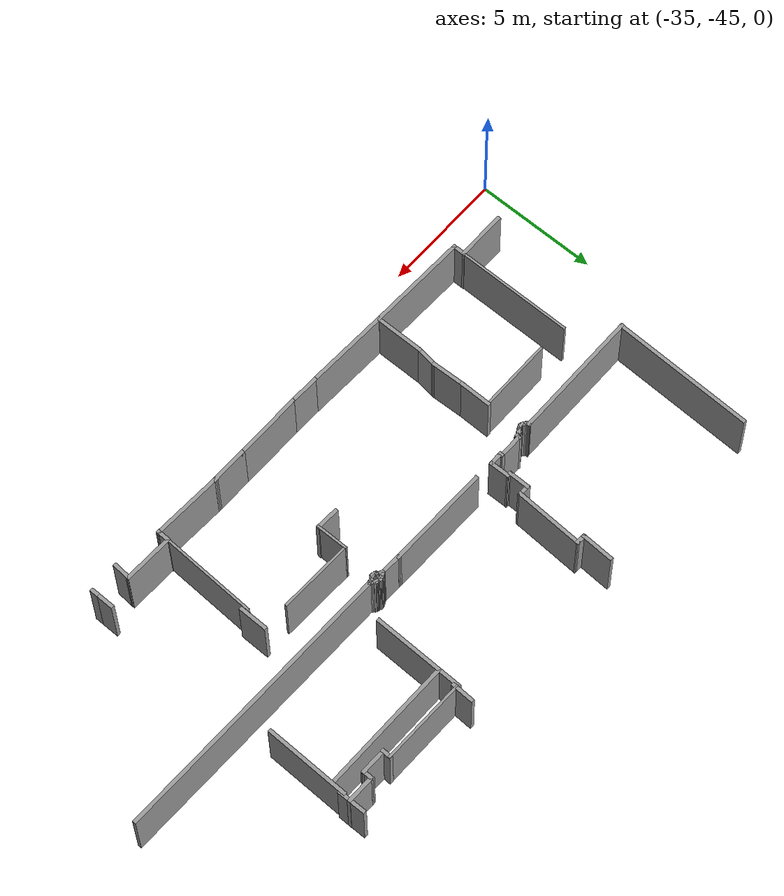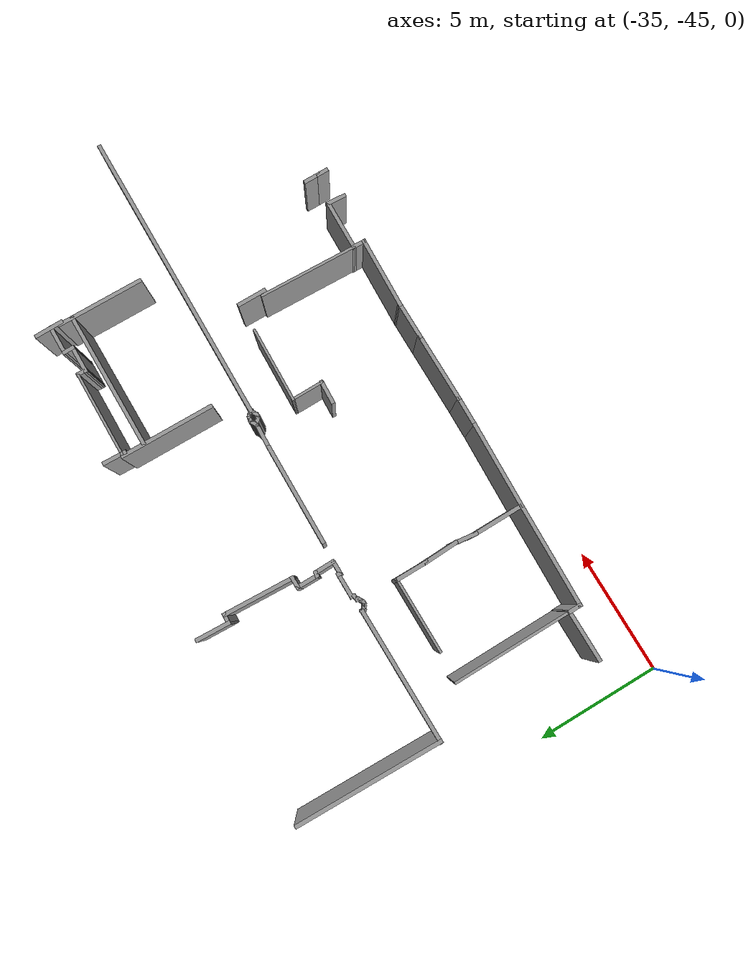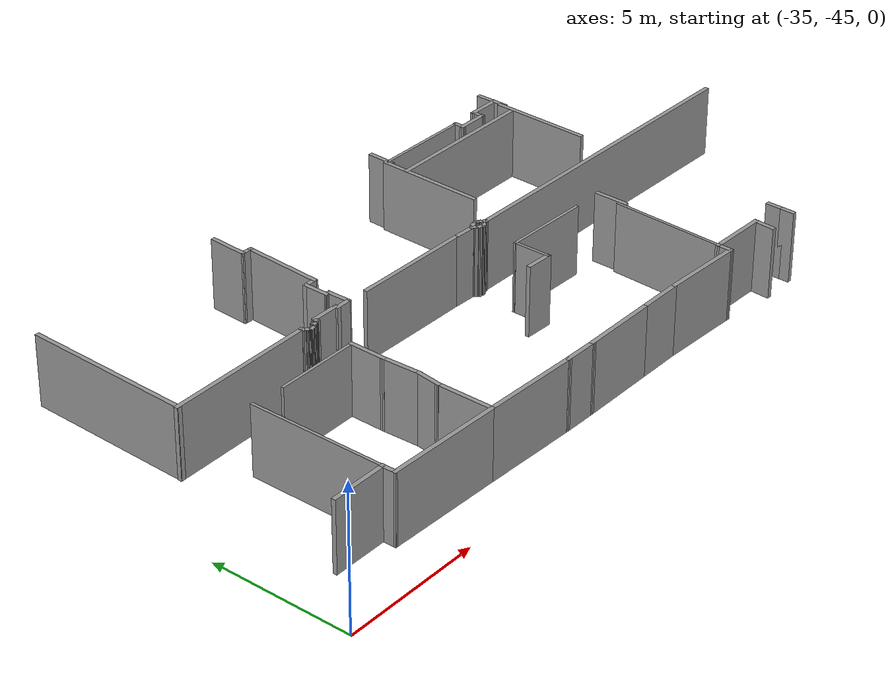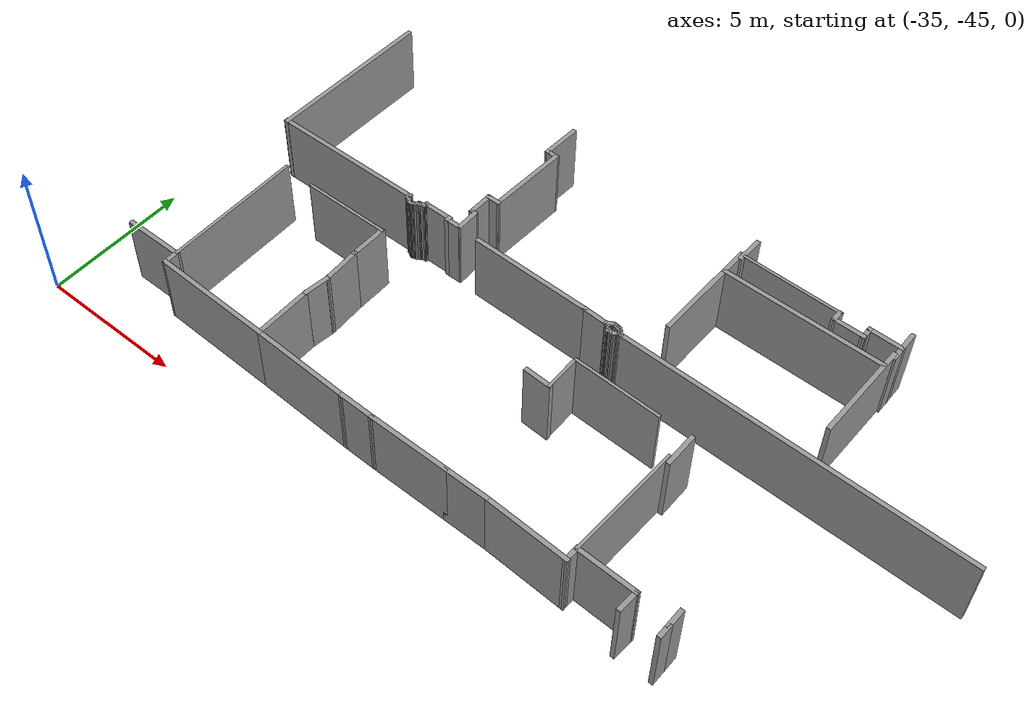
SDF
<sdf version="1.4">
 <model name="3ne_real">
  <pose>-14.229 -33.4428 0 0 -0 0</pose>
  <link name="Wall_301">
   <collision name="Wall_301_Collision">
    <geometry><box><size>4.81443 0.1 2.5</size></box></geometry>
    <pose>0 0 1.25 0 -0 0</pose>
   </collision>
   <visual name="Wall_301_Visual">
    <pose>0 0 1.25 0 -0 0</pose>
    <geometry><box><size>4.81443 0.1 2.5</size></box></geometry>
    <material>
     <script><uri>file://media/materials/scripts/gazebo.material</uri><name>Gazebo/Grey</name></script>
     <ambient>1 1 1 1</ambient>
    </material>
    <meta><layer>0</layer></meta>
   </visual>
   <pose>-17.037 -7.10025 0 0 -0 -1.56358</pose>
  </link>
  <link name="Wall_303">
   <collision name="Wall_303_Collision">
    <geometry><box><size>3.03967 0.1 2.5</size></box></geometry>
    <pose>0 0 1.25 0 -0 0</pose>
   </collision>
   <visual name="Wall_303_Visual">
    <pose>0 0 1.25 0 -0 0</pose>
    <geometry><box><size>3.03967 0.1 2.5</size></box></geometry>
    <material>
     <script><uri>file://media/materials/scripts/gazebo.material</uri><name>Gazebo/Grey</name></script>
     <ambient>1 1 1 1</ambient>
    </material>
    <meta><layer>0</layer></meta>
   </visual>
   <pose>-14.397 -4.83325 0 0 -0 0</pose>
  </link>
  <link name="Wall_304">
   <collision name="Wall_304_Collision">
    <geometry><box><size>1.35998 0.15 2.5</size></box></geometry>
    <pose>0 0 1.25 0 -0 0</pose>
   </collision>
   <visual name="Wall_304_Visual">
    <pose>0 0 1.25 0 -0 0</pose>
    <geometry><box><size>1.35998 0.15 2.5</size></box></geometry>
    <material>
     <script><uri>file://media/materials/scripts/gazebo.material</uri><name>Gazebo/Grey</name></script>
     <ambient>1 1 1 1</ambient>
    </material>
    <meta><layer>0</layer></meta>
   </visual>
   <pose>-12.9272 -5.43815 0 0 -0 -1.57107</pose>
  </link>
  <link name="Wall_305">
   <collision name="Wall_305_Collision">
    <geometry><box><size>1.42886 0.15 2.5</size></box></geometry>
    <pose>0 0 1.25 0 -0 0</pose>
   </collision>
   <visual name="Wall_305_Visual">
    <pose>0 0 1.25 0 -0 0</pose>
    <geometry><box><size>1.42886 0.15 2.5</size></box></geometry>
    <material>
     <script><uri>file://media/materials/scripts/gazebo.material</uri><name>Gazebo/Grey</name></script>
     <ambient>1 1 1 1</ambient>
    </material>
    <meta><layer>0</layer></meta>
   </visual>
   <pose>-12.8991 -6.68186 0 0 -0 -1.52658</pose>
  </link>
  <link name="Wall_307">
   <collision name="Wall_307_Collision">
    <geometry><box><size>0.944802 0.15 2.5</size></box></geometry>
    <pose>0 0 1.25 0 -0 0</pose>
   </collision>
   <visual name="Wall_307_Visual">
    <pose>0 0 1.25 0 -0 0</pose>
    <geometry><box><size>0.944802 0.15 2.5</size></box></geometry>
    <material>
     <script><uri>file://media/materials/scripts/gazebo.material</uri><name>Gazebo/Grey</name></script>
     <ambient>1 1 1 1</ambient>
    </material>
    <meta><layer>0</layer></meta>
   </visual>
   <pose>-12.9203 -7.71498 0 0 -0 -1.69556</pose>
  </link>
  <link name="Wall_308">
   <collision name="Wall_308_Collision">
    <geometry><box><size>1.92942 0.15 2.5</size></box></geometry>
    <pose>0 0 1.25 0 -0 0</pose>
   </collision>
   <visual name="Wall_308_Visual">
    <pose>0 0 1.25 0 -0 0</pose>
    <geometry><box><size>1.92942 0.15 2.5</size></box></geometry>
    <material>
     <script><uri>file://media/materials/scripts/gazebo.material</uri><name>Gazebo/Grey</name></script>
     <ambient>1 1 1 1</ambient>
    </material>
    <meta><layer>0</layer></meta>
   </visual>
   <pose>-12.9623 -8.99897 0 0 -0 -1.56239</pose>
  </link>
  <link name="Wall_311">
   <collision name="Wall_311_Collision">
    <geometry><box><size>0.983767 0.15 2.5</size></box></geometry>
    <pose>0 0 1.25 0 -0 0</pose>
   </collision>
   <visual name="Wall_311_Visual">
    <pose>0 0 1.25 0 -0 0</pose>
    <geometry><box><size>0.983767 0.15 2.5</size></box></geometry>
    <material>
     <script><uri>file://media/materials/scripts/gazebo.material</uri><name>Gazebo/Grey</name></script>
     <ambient>1 1 1 1</ambient>
    </material>
    <meta><layer>0</layer></meta>
   </visual>
   <pose>-5.78296 -6.17062 0 0 -0 -0.047152</pose>
  </link>
  <link name="Wall_312">
   <collision name="Wall_312_Collision">
    <geometry><box><size>1.32207 0.1 2.5</size></box></geometry>
    <pose>0 0 1.25 0 -0 0</pose>
   </collision>
   <visual name="Wall_312_Visual">
    <pose>0 0 1.25 0 -0 0</pose>
    <geometry><box><size>1.32207 0.1 2.5</size></box></geometry>
    <material>
     <script><uri>file://media/materials/scripts/gazebo.material</uri><name>Gazebo/Grey</name></script>
     <ambient>1 1 1 1</ambient>
    </material>
    <meta><layer>0</layer></meta>
   </visual>
   <pose>-5.37353 -5.57925 0 0 -0 1.58143</pose>
  </link>
  <link name="Wall_313">
   <collision name="Wall_313_Collision">
    <geometry><box><size>3.0658 0.1 2.5</size></box></geometry>
    <pose>0 0 1.25 0 -0 0</pose>
   </collision>
   <visual name="Wall_313_Visual">
    <pose>0 0 1.25 0 -0 0</pose>
    <geometry><box><size>3.0658 0.1 2.5</size></box></geometry>
    <material>
     <script><uri>file://media/materials/scripts/gazebo.material</uri><name>Gazebo/Grey</name></script>
     <ambient>1 1 1 1</ambient>
    </material>
    <meta><layer>0</layer></meta>
   </visual>
   <pose>-3.89753 -5.01374 0 0 -0 -0.030678</pose>
  </link>
  <link name="Wall_315">
   <collision name="Wall_315_Collision">
    <geometry><box><size>1.20318 0.15 2.5</size></box></geometry>
    <pose>0 0 1.25 0 -0 0</pose>
   </collision>
   <visual name="Wall_315_Visual">
    <pose>0 0 1.25 0 -0 0</pose>
    <geometry><box><size>1.20318 0.15 2.5</size></box></geometry>
    <material>
     <script><uri>file://media/materials/scripts/gazebo.material</uri><name>Gazebo/Grey</name></script>
     <ambient>1 1 1 1</ambient>
    </material>
    <meta><layer>0</layer></meta>
   </visual>
   <pose>-1.28405 -5.5984 0 0 -0 -1.5708</pose>
  </link>
  <link name="Wall_317">
   <collision name="Wall_317_Collision">
    <geometry><box><size>3.98436 0.1 2.5</size></box></geometry>
    <pose>0 0 1.25 0 -0 0</pose>
   </collision>
   <visual name="Wall_317_Visual">
    <pose>0 0 1.25 0 -0 0</pose>
    <geometry><box><size>3.98436 0.1 2.5</size></box></geometry>
    <material>
     <script><uri>file://media/materials/scripts/gazebo.material</uri><name>Gazebo/Grey</name></script>
     <ambient>1 1 1 1</ambient>
    </material>
    <meta><layer>0</layer></meta>
   </visual>
   <pose>-1.47753 -7.91025 0 0 -0 1.53809</pose>
  </link>
  <link name="Wall_320">
   <collision name="Wall_320_Collision">
    <geometry><box><size>0.683092 0.15 2.5</size></box></geometry>
    <pose>0 0 1.25 0 -0 0</pose>
   </collision>
   <visual name="Wall_320_Visual">
    <pose>0 0 1.25 0 -0 0</pose>
    <geometry><box><size>0.683092 0.15 2.5</size></box></geometry>
    <material>
     <script><uri>file://media/materials/scripts/gazebo.material</uri><name>Gazebo/Grey</name></script>
     <ambient>1 1 1 1</ambient>
    </material>
    <meta><layer>0</layer></meta>
   </visual>
   <pose>1.58944 -9.88914 0 0 -0 1.5708</pose>
  </link>
  <link name="Wall_330">
   <collision name="Wall_330_Collision">
    <geometry><box><size>5.39102 0.15 2.5</size></box></geometry>
    <pose>0 0 1.25 0 -0 0</pose>
   </collision>
   <visual name="Wall_330_Visual">
    <pose>0 0 1.25 0 -0 0</pose>
    <geometry><box><size>5.39102 0.15 2.5</size></box></geometry>
    <material>
     <script><uri>file://media/materials/scripts/gazebo.material</uri><name>Gazebo/Grey</name></script>
     <ambient>1 1 1 1</ambient>
    </material>
    <meta><layer>0</layer></meta>
   </visual>
   <pose>-15.8782 -3.21132 0 0 -0 0.004255</pose>
  </link>
  <link name="Wall_332">
   <collision name="Wall_332_Collision">
    <geometry><box><size>0.236174 0.15 2.5</size></box></geometry>
    <pose>0 0 1.25 0 -0 0</pose>
   </collision>
   <visual name="Wall_332_Visual">
    <pose>0 0 1.25 0 -0 0</pose>
    <geometry><box><size>0.236174 0.15 2.5</size></box></geometry>
    <material>
     <script><uri>file://media/materials/scripts/gazebo.material</uri><name>Gazebo/Grey</name></script>
     <ambient>1 1 1 1</ambient>
    </material>
    <meta><layer>0</layer></meta>
   </visual>
   <pose>-13.2431 -3.24071 0 0 -0 -1.22513</pose>
  </link>
  <link name="Wall_333">
   <collision name="Wall_333_Collision">
    <geometry><box><size>0.23017 0.15 2.5</size></box></geometry>
    <pose>0 0 1.25 0 -0 0</pose>
   </collision>
   <visual name="Wall_333_Visual">
    <pose>0 0 1.25 0 -0 0</pose>
    <geometry><box><size>0.23017 0.15 2.5</size></box></geometry>
    <material>
     <script><uri>file://media/materials/scripts/gazebo.material</uri><name>Gazebo/Grey</name></script>
     <ambient>1 1 1 1</ambient>
    </material>
    <meta><layer>0</layer></meta>
   </visual>
   <pose>-13.1967 -3.30568 0 0 -0 -0.655696</pose>
  </link>
  <link name="Wall_334">
   <collision name="Wall_334_Collision">
    <geometry><box><size>0.235505 0.15 2.5</size></box></geometry>
    <pose>0 0 1.25 0 -0 0</pose>
   </collision>
   <visual name="Wall_334_Visual">
    <pose>0 0 1.25 0 -0 0</pose>
    <geometry><box><size>0.235505 0.15 2.5</size></box></geometry>
    <material>
     <script><uri>file://media/materials/scripts/gazebo.material</uri><name>Gazebo/Grey</name></script>
     <ambient>1 1 1 1</ambient>
    </material>
    <meta><layer>0</layer></meta>
   </visual>
   <pose>-13.1283 -3.35212 0 0 -0 -0.54042</pose>
  </link>
  <link name="Wall_335">
   <collision name="Wall_335_Collision">
    <geometry><box><size>0.207213 0.15 2.5</size></box></geometry>
    <pose>0 0 1.25 0 -0 0</pose>
   </collision>
   <visual name="Wall_335_Visual">
    <pose>0 0 1.25 0 -0 0</pose>
    <geometry><box><size>0.207213 0.15 2.5</size></box></geometry>
    <material>
     <script><uri>file://media/materials/scripts/gazebo.material</uri><name>Gazebo/Grey</name></script>
     <ambient>1 1 1 1</ambient>
    </material>
    <meta><layer>0</layer></meta>
   </visual>
   <pose>-13.0647 -3.38389 0 0 -0 -0.348771</pose>
  </link>
  <link name="Wall_336">
   <collision name="Wall_336_Collision">
    <geometry><box><size>0.194263 0.15 2.5</size></box></geometry>
    <pose>0 0 1.25 0 -0 0</pose>
   </collision>
   <visual name="Wall_336_Visual">
    <pose>0 0 1.25 0 -0 0</pose>
    <geometry><box><size>0.194263 0.15 2.5</size></box></geometry>
    <material>
     <script><uri>file://media/materials/scripts/gazebo.material</uri><name>Gazebo/Grey</name></script>
     <ambient>1 1 1 1</ambient>
    </material>
    <meta><layer>0</layer></meta>
   </visual>
   <pose>-13.0159 -3.39122 0 0 -0 0.110657</pose>
  </link>
  <link name="Wall_337">
   <collision name="Wall_337_Collision">
    <geometry><box><size>0.196372 0.15 2.5</size></box></geometry>
    <pose>0 0 1.25 0 -0 0</pose>
   </collision>
   <visual name="Wall_337_Visual">
    <pose>0 0 1.25 0 -0 0</pose>
    <geometry><box><size>0.196372 0.15 2.5</size></box></geometry>
    <material>
     <script><uri>file://media/materials/scripts/gazebo.material</uri><name>Gazebo/Grey</name></script>
     <ambient>1 1 1 1</ambient>
    </material>
    <meta><layer>0</layer></meta>
   </visual>
   <pose>-12.9719 -3.38145 0 0 -0 0.321751</pose>
  </link>
  <link name="Wall_338">
   <collision name="Wall_338_Collision">
    <geometry><box><size>0.252765 0.15 2.5</size></box></geometry>
    <pose>0 0 1.25 0 -0 0</pose>
   </collision>
   <visual name="Wall_338_Visual">
    <pose>0 0 1.25 0 -0 0</pose>
    <geometry><box><size>0.252765 0.15 2.5</size></box></geometry>
    <material>
     <script><uri>file://media/materials/scripts/gazebo.material</uri><name>Gazebo/Grey</name></script>
     <ambient>1 1 1 1</ambient>
    </material>
    <meta><layer>0</layer></meta>
   </visual>
   <pose>-12.9034 -3.35212 0 0 -0 0.442374</pose>
  </link>
  <link name="Wall_339">
   <collision name="Wall_339_Collision">
    <geometry><box><size>0.22332 0.15 2.5</size></box></geometry>
    <pose>0 0 1.25 0 -0 0</pose>
   </collision>
   <visual name="Wall_339_Visual">
    <pose>0 0 1.25 0 -0 0</pose>
    <geometry><box><size>0.22332 0.15 2.5</size></box></geometry>
    <material>
     <script><uri>file://media/materials/scripts/gazebo.material</uri><name>Gazebo/Grey</name></script>
     <ambient>1 1 1 1</ambient>
    </material>
    <meta><layer>0</layer></meta>
   </visual>
   <pose>-12.8277 -3.30813 0 0 -0 0.643501</pose>
  </link>
  <link name="Wall_340">
   <collision name="Wall_340_Collision">
    <geometry><box><size>0.179328 0.15 2.5</size></box></geometry>
    <pose>0 0 1.25 0 -0 0</pose>
   </collision>
   <visual name="Wall_340_Visual">
    <pose>0 0 1.25 0 -0 0</pose>
    <geometry><box><size>0.179328 0.15 2.5</size></box></geometry>
    <material>
     <script><uri>file://media/materials/scripts/gazebo.material</uri><name>Gazebo/Grey</name></script>
     <ambient>1 1 1 1</ambient>
    </material>
    <meta><layer>0</layer></meta>
   </visual>
   <pose>-12.7983 -3.27147 0 0 -0 1.5708</pose>
  </link>
  <link name="Wall_341">
   <collision name="Wall_341_Collision">
    <geometry><box><size>0.319678 0.15 2.5</size></box></geometry>
    <pose>0 0 1.25 0 -0 0</pose>
   </collision>
   <visual name="Wall_341_Visual">
    <pose>0 0 1.25 0 -0 0</pose>
    <geometry><box><size>0.319678 0.15 2.5</size></box></geometry>
    <material>
     <script><uri>file://media/materials/scripts/gazebo.material</uri><name>Gazebo/Grey</name></script>
     <ambient>1 1 1 1</ambient>
    </material>
    <meta><layer>0</layer></meta>
   </visual>
   <pose>-12.7152 -3.2397 0 0 -0 0.203045</pose>
  </link>
  <link name="Wall_342">
   <collision name="Wall_342_Collision">
    <geometry><box><size>0.244908 0.15 2.5</size></box></geometry>
    <pose>0 0 1.25 0 -0 0</pose>
   </collision>
   <visual name="Wall_342_Visual">
    <pose>0 0 1.25 0 -0 0</pose>
    <geometry><box><size>0.244908 0.15 2.5</size></box></geometry>
    <material>
     <script><uri>file://media/materials/scripts/gazebo.material</uri><name>Gazebo/Grey</name></script>
     <ambient>1 1 1 1</ambient>
    </material>
    <meta><layer>0</layer></meta>
   </visual>
   <pose>-12.6224 -3.17615 0 0 -0 1.3633</pose>
  </link>
  <link name="Wall_343">
   <collision name="Wall_343_Collision">
    <geometry><box><size>1.07384 0.15 2.5</size></box></geometry>
    <pose>0 0 1.25 0 -0 0</pose>
   </collision>
   <visual name="Wall_343_Visual">
    <pose>0 0 1.25 0 -0 0</pose>
    <geometry><box><size>1.07384 0.15 2.5</size></box></geometry>
    <material>
     <script><uri>file://media/materials/scripts/gazebo.material</uri><name>Gazebo/Grey</name></script>
     <ambient>1 1 1 1</ambient>
    </material>
    <meta><layer>0</layer></meta>
   </visual>
   <pose>-12.1507 -3.1346 0 0 -0 0</pose>
  </link>
  <link name="Wall_345">
   <collision name="Wall_345_Collision">
    <geometry><box><size>0.223483 0.15 2.5</size></box></geometry>
    <pose>0 0 1.25 0 -0 0</pose>
   </collision>
   <visual name="Wall_345_Visual">
    <pose>0 0 1.25 0 -0 0</pose>
    <geometry><box><size>0.223483 0.15 2.5</size></box></geometry>
    <material>
     <script><uri>file://media/materials/scripts/gazebo.material</uri><name>Gazebo/Grey</name></script>
     <ambient>1 1 1 1</ambient>
    </material>
    <meta><layer>0</layer></meta>
   </visual>
   <pose>-11.6888 -3.17126 0 0 -0 -1.5708</pose>
  </link>
  <link name="Wall_346">
   <collision name="Wall_346_Collision">
    <geometry><box><size>0.57037 0.15 2.5</size></box></geometry>
    <pose>0 0 1.25 0 -0 0</pose>
   </collision>
   <visual name="Wall_346_Visual">
    <pose>0 0 1.25 0 -0 0</pose>
    <geometry><box><size>0.57037 0.15 2.5</size></box></geometry>
    <material>
     <script><uri>file://media/materials/scripts/gazebo.material</uri><name>Gazebo/Grey</name></script>
     <ambient>1 1 1 1</ambient>
    </material>
    <meta><layer>0</layer></meta>
   </visual>
   <pose>-11.4786 -3.20792 0 0 -0 0</pose>
  </link>
  <link name="Wall_348">
   <collision name="Wall_348_Collision">
    <geometry><box><size>4.2466 0.15 2.5</size></box></geometry>
    <pose>0 0 1.25 0 -0 0</pose>
   </collision>
   <visual name="Wall_348_Visual">
    <pose>0 0 1.25 0 -0 0</pose>
    <geometry><box><size>4.2466 0.15 2.5</size></box></geometry>
    <material>
     <script><uri>file://media/materials/scripts/gazebo.material</uri><name>Gazebo/Grey</name></script>
     <ambient>1 1 1 1</ambient>
    </material>
    <meta><layer>0</layer></meta>
   </visual>
   <pose>-8.36346 -3.28653 0 0 -0 -0.016332</pose>
  </link>
  <link name="Wall_349">
   <collision name="Wall_349_Collision">
    <geometry><box><size>0.95374 0.15 2.5</size></box></geometry>
    <pose>0 0 1.25 0 -0 0</pose>
   </collision>
   <visual name="Wall_349_Visual">
    <pose>0 0 1.25 0 -0 0</pose>
    <geometry><box><size>0.95374 0.15 2.5</size></box></geometry>
    <material>
     <script><uri>file://media/materials/scripts/gazebo.material</uri><name>Gazebo/Grey</name></script>
     <ambient>1 1 1 1</ambient>
    </material>
    <meta><layer>0</layer></meta>
   </visual>
   <pose>-5.91393 -3.33857 0 0 -0 -0.046263</pose>
  </link>
  <link name="Wall_351">
   <collision name="Wall_351_Collision">
    <geometry><box><size>0.216492 0.15 2.5</size></box></geometry>
    <pose>0 0 1.25 0 -0 0</pose>
   </collision>
   <visual name="Wall_351_Visual">
    <pose>0 0 1.25 0 -0 0</pose>
    <geometry><box><size>0.216492 0.15 2.5</size></box></geometry>
    <material>
     <script><uri>file://media/materials/scripts/gazebo.material</uri><name>Gazebo/Grey</name></script>
     <ambient>1 1 1 1</ambient>
    </material>
    <meta><layer>0</layer></meta>
   </visual>
   <pose>-5.48275 -3.37202 0 0 -0 -0.463648</pose>
  </link>
  <link name="Wall_352">
   <collision name="Wall_352_Collision">
    <geometry><box><size>0.234107 0.15 2.5</size></box></geometry>
    <pose>0 0 1.25 0 -0 0</pose>
   </collision>
   <visual name="Wall_352_Visual">
    <pose>0 0 1.25 0 -0 0</pose>
    <geometry><box><size>0.234107 0.15 2.5</size></box></geometry>
    <material>
     <script><uri>file://media/materials/scripts/gazebo.material</uri><name>Gazebo/Grey</name></script>
     <ambient>1 1 1 1</ambient>
    </material>
    <meta><layer>0</layer></meta>
   </visual>
   <pose>-5.42328 -3.41662 0 0 -0 -0.785398</pose>
  </link>
  <link name="Wall_353">
   <collision name="Wall_353_Collision">
    <geometry><box><size>0.234107 0.15 2.5</size></box></geometry>
    <pose>0 0 1.25 0 -0 0</pose>
   </collision>
   <visual name="Wall_353_Visual">
    <pose>0 0 1.25 0 -0 0</pose>
    <geometry><box><size>0.234107 0.15 2.5</size></box></geometry>
    <material>
     <script><uri>file://media/materials/scripts/gazebo.material</uri><name>Gazebo/Grey</name></script>
     <ambient>1 1 1 1</ambient>
    </material>
    <meta><layer>0</layer></meta>
   </visual>
   <pose>-5.36381 -3.4761 0 0 -0 -0.785398</pose>
  </link>
  <link name="Wall_354">
   <collision name="Wall_354_Collision">
    <geometry><box><size>0.220526 0.15 2.5</size></box></geometry>
    <pose>0 0 1.25 0 -0 0</pose>
   </collision>
   <visual name="Wall_354_Visual">
    <pose>0 0 1.25 0 -0 0</pose>
    <geometry><box><size>0.220526 0.15 2.5</size></box></geometry>
    <material>
     <script><uri>file://media/materials/scripts/gazebo.material</uri><name>Gazebo/Grey</name></script>
     <ambient>1 1 1 1</ambient>
    </material>
    <meta><layer>0</layer></meta>
   </visual>
   <pose>-5.30062 -3.51699 0 0 -0 -0.321751</pose>
  </link>
  <link name="Wall_355">
   <collision name="Wall_355_Collision">
    <geometry><box><size>0.218539 0.15 2.5</size></box></geometry>
    <pose>0 0 1.25 0 -0 0</pose>
   </collision>
   <visual name="Wall_355_Visual">
    <pose>0 0 1.25 0 -0 0</pose>
    <geometry><box><size>0.218539 0.15 2.5</size></box></geometry>
    <material>
     <script><uri>file://media/materials/scripts/gazebo.material</uri><name>Gazebo/Grey</name></script>
     <ambient>1 1 1 1</ambient>
    </material>
    <meta><layer>0</layer></meta>
   </visual>
   <pose>-5.23371 -3.53557 0 0 -0 -0.218669</pose>
  </link>
  <link name="Wall_356">
   <collision name="Wall_356_Collision">
    <geometry><box><size>0.230067 0.15 2.5</size></box></geometry>
    <pose>0 0 1.25 0 -0 0</pose>
   </collision>
   <visual name="Wall_356_Visual">
    <pose>0 0 1.25 0 -0 0</pose>
    <geometry><box><size>0.230067 0.15 2.5</size></box></geometry>
    <material>
     <script><uri>file://media/materials/scripts/gazebo.material</uri><name>Gazebo/Grey</name></script>
     <ambient>1 1 1 1</ambient>
    </material>
    <meta><layer>0</layer></meta>
   </visual>
   <pose>-5.16309 -3.52814 0 0 -0 0.380506</pose>
  </link>
  <link name="Wall_357">
   <collision name="Wall_357_Collision">
    <geometry><box><size>0.253277 0.15 2.5</size></box></geometry>
    <pose>0 0 1.25 0 -0 0</pose>
   </collision>
   <visual name="Wall_357_Visual">
    <pose>0 0 1.25 0 -0 0</pose>
    <geometry><box><size>0.253277 0.15 2.5</size></box></geometry>
    <material>
     <script><uri>file://media/materials/scripts/gazebo.material</uri><name>Gazebo/Grey</name></script>
     <ambient>1 1 1 1</ambient>
    </material>
    <meta><layer>0</layer></meta>
   </visual>
   <pose>-5.08131 -3.48725 0 0 -0 0.528074</pose>
  </link>
  <link name="Wall_358">
   <collision name="Wall_358_Collision">
    <geometry><box><size>0.213517 0.15 2.5</size></box></geometry>
    <pose>0 0 1.25 0 -0 0</pose>
   </collision>
   <visual name="Wall_358_Visual">
    <pose>0 0 1.25 0 -0 0</pose>
    <geometry><box><size>0.213517 0.15 2.5</size></box></geometry>
    <material>
     <script><uri>file://media/materials/scripts/gazebo.material</uri><name>Gazebo/Grey</name></script>
     <ambient>1 1 1 1</ambient>
    </material>
    <meta><layer>0</layer></meta>
   </visual>
   <pose>-5.00697 -3.45008 0 0 -0 0.358771</pose>
  </link>
  <link name="Wall_361">
   <collision name="Wall_361_Collision">
    <geometry><box><size>0.210542 0.15 2.5</size></box></geometry>
    <pose>0 0 1.25 0 -0 0</pose>
   </collision>
   <visual name="Wall_361_Visual">
    <pose>0 0 1.25 0 -0 0</pose>
    <geometry><box><size>0.210542 0.15 2.5</size></box></geometry>
    <material>
     <script><uri>file://media/materials/scripts/gazebo.material</uri><name>Gazebo/Grey</name></script>
     <ambient>1 1 1 1</ambient>
    </material>
    <meta><layer>0</layer></meta>
   </visual>
   <pose>-5.4685 -3.32291 0 0 -0 0.380506</pose>
  </link>
  <link name="Wall_362">
   <collision name="Wall_362_Collision">
    <geometry><box><size>0.220434 0.15 2.5</size></box></geometry>
    <pose>0 0 1.25 0 -0 0</pose>
   </collision>
   <visual name="Wall_362_Visual">
    <pose>0 0 1.25 0 -0 0</pose>
    <geometry><box><size>0.220434 0.15 2.5</size></box></geometry>
    <material>
     <script><uri>file://media/materials/scripts/gazebo.material</uri><name>Gazebo/Grey</name></script>
     <ambient>1 1 1 1</ambient>
    </material>
    <meta><layer>0</layer></meta>
   </visual>
   <pose>-5.40947 -3.29481 0 0 -0 0.499347</pose>
  </link>
  <link name="Wall_363">
   <collision name="Wall_363_Collision">
    <geometry><box><size>0.200278 0.15 2.5</size></box></geometry>
    <pose>0 0 1.25 0 -0 0</pose>
   </collision>
   <visual name="Wall_363_Visual">
    <pose>0 0 1.25 0 -0 0</pose>
    <geometry><box><size>0.200278 0.15 2.5</size></box></geometry>
    <material>
     <script><uri>file://media/materials/scripts/gazebo.material</uri><name>Gazebo/Grey</name></script>
     <ambient>1 1 1 1</ambient>
    </material>
    <meta><layer>0</layer></meta>
   </visual>
   <pose>-5.35607 -3.2667 0 0 -0 0.463648</pose>
  </link>
  <link name="Wall_364">
   <collision name="Wall_364_Collision">
    <geometry><box><size>0.207325 0.15 2.5</size></box></geometry>
    <pose>0 0 1.25 0 -0 0</pose>
   </collision>
   <visual name="Wall_364_Visual">
    <pose>0 0 1.25 0 -0 0</pose>
    <geometry><box><size>0.207325 0.15 2.5</size></box></geometry>
    <material>
     <script><uri>file://media/materials/scripts/gazebo.material</uri><name>Gazebo/Grey</name></script>
     <ambient>1 1 1 1</ambient>
    </material>
    <meta><layer>0</layer></meta>
   </visual>
   <pose>-5.30548 -3.24984 0 0 -0 0.197396</pose>
  </link>
  <link name="Wall_365">
   <collision name="Wall_365_Collision">
    <geometry><box><size>0.234506 0.15 2.5</size></box></geometry>
    <pose>0 0 1.25 0 -0 0</pose>
   </collision>
   <visual name="Wall_365_Visual">
    <pose>0 0 1.25 0 -0 0</pose>
    <geometry><box><size>0.234506 0.15 2.5</size></box></geometry>
    <material>
     <script><uri>file://media/materials/scripts/gazebo.material</uri><name>Gazebo/Grey</name></script>
     <ambient>1 1 1 1</ambient>
    </material>
    <meta><layer>0</layer></meta>
   </visual>
   <pose>-5.23522 -3.24984 0 0 -0 -0.132552</pose>
  </link>
  <link name="Wall_366">
   <collision name="Wall_366_Collision">
    <geometry><box><size>0.221104 0.15 2.5</size></box></geometry>
    <pose>0 0 1.25 0 -0 0</pose>
   </collision>
   <visual name="Wall_366_Visual">
    <pose>0 0 1.25 0 -0 0</pose>
    <geometry><box><size>0.221104 0.15 2.5</size></box></geometry>
    <material>
     <script><uri>file://media/materials/scripts/gazebo.material</uri><name>Gazebo/Grey</name></script>
     <ambient>1 1 1 1</ambient>
    </material>
    <meta><layer>0</layer></meta>
   </visual>
   <pose>-5.15933 -3.2667 0 0 -0 -0.321751</pose>
  </link>
  <link name="Wall_367">
   <collision name="Wall_367_Collision">
    <geometry><box><size>0.200278 0.15 2.5</size></box></geometry>
    <pose>0 0 1.25 0 -0 0</pose>
   </collision>
   <visual name="Wall_367_Visual">
    <pose>0 0 1.25 0 -0 0</pose>
    <geometry><box><size>0.200278 0.15 2.5</size></box></geometry>
    <material>
     <script><uri>file://media/materials/scripts/gazebo.material</uri><name>Gazebo/Grey</name></script>
     <ambient>1 1 1 1</ambient>
    </material>
    <meta><layer>0</layer></meta>
   </visual>
   <pose>-5.10312 -3.28919 0 0 -0 -0.463648</pose>
  </link>
  <link name="Wall_368">
   <collision name="Wall_368_Collision">
    <geometry><box><size>0.209754 0.15 2.5</size></box></geometry>
    <pose>0 0 1.25 0 -0 0</pose>
   </collision>
   <visual name="Wall_368_Visual">
    <pose>0 0 1.25 0 -0 0</pose>
    <geometry><box><size>0.209754 0.15 2.5</size></box></geometry>
    <material>
     <script><uri>file://media/materials/scripts/gazebo.material</uri><name>Gazebo/Grey</name></script>
     <ambient>1 1 1 1</ambient>
    </material>
    <meta><layer>0</layer></meta>
   </visual>
   <pose>-5.06096 -3.32291 0 0 -0 -0.851966</pose>
  </link>
  <link name="Wall_369">
   <collision name="Wall_369_Collision">
    <geometry><box><size>0.206212 0.15 2.5</size></box></geometry>
    <pose>0 0 1.25 0 -0 0</pose>
   </collision>
   <visual name="Wall_369_Visual">
    <pose>0 0 1.25 0 -0 0</pose>
    <geometry><box><size>0.206212 0.15 2.5</size></box></geometry>
    <material>
     <script><uri>file://media/materials/scripts/gazebo.material</uri><name>Gazebo/Grey</name></script>
     <ambient>1 1 1 1</ambient>
    </material>
    <meta><layer>0</layer></meta>
   </visual>
   <pose>-5.0188 -3.36226 0 0 -0 -0.643501</pose>
  </link>
  <link name="Wall_370">
   <collision name="Wall_370_Collision">
    <geometry><box><size>0.221547 0.15 2.5</size></box></geometry>
    <pose>0 0 1.25 0 -0 0</pose>
   </collision>
   <visual name="Wall_370_Visual">
    <pose>0 0 1.25 0 -0 0</pose>
    <geometry><box><size>0.221547 0.15 2.5</size></box></geometry>
    <material>
     <script><uri>file://media/materials/scripts/gazebo.material</uri><name>Gazebo/Grey</name></script>
     <ambient>1 1 1 1</ambient>
    </material>
    <meta><layer>0</layer></meta>
   </visual>
   <pose>-4.97102 -3.40442 0 0 -0 -0.785398</pose>
  </link>
  <link name="Wall_371">
   <collision name="Wall_371_Collision">
    <geometry><box><size>11.8742 0.15 2.5</size></box></geometry>
    <pose>0 0 1.25 0 -0 0</pose>
   </collision>
   <visual name="Wall_371_Visual">
    <pose>0 0 1.25 0 -0 0</pose>
    <geometry><box><size>11.8742 0.15 2.5</size></box></geometry>
    <material>
     <script><uri>file://media/materials/scripts/gazebo.material</uri><name>Gazebo/Grey</name></script>
     <ambient>1 1 1 1</ambient>
    </material>
    <meta><layer>0</layer></meta>
   </visual>
   <pose>0.915671 -3.52447 0 0 -0 -0.016163</pose>
  </link>
  <link name="Wall_429">
   <collision name="Wall_429_Collision">
    <geometry><box><size>1.16813 0.15 2.5</size></box></geometry>
    <pose>0 0 1.25 0 -0 0</pose>
   </collision>
   <visual name="Wall_429_Visual">
    <pose>0 0 1.25 0 -0 0</pose>
    <geometry><box><size>1.16813 0.15 2.5</size></box></geometry>
    <material>
     <script><uri>file://media/materials/scripts/gazebo.material</uri><name>Gazebo/Grey</name></script>
     <ambient>1 1 1 1</ambient>
    </material>
    <meta><layer>0</layer></meta>
   </visual>
   <pose>1.50568 1.41839 0 0 -0 -1.55969</pose>
  </link>
  <link name="Wall_433">
   <collision name="Wall_433_Collision">
    <geometry><box><size>0.444181 0.15 2.5</size></box></geometry>
    <pose>0 0 1.25 0 -0 0</pose>
   </collision>
   <visual name="Wall_433_Visual">
    <pose>0 0 1.25 0 -0 0</pose>
    <geometry><box><size>0.444181 0.15 2.5</size></box></geometry>
    <material>
     <script><uri>file://media/materials/scripts/gazebo.material</uri><name>Gazebo/Grey</name></script>
     <ambient>1 1 1 1</ambient>
    </material>
    <meta><layer>0</layer></meta>
   </visual>
   <pose>-0.551872 1.16971 0 0 -0 -1.61052</pose>
  </link>
  <link name="Wall_434">
   <collision name="Wall_434_Collision">
    <geometry><box><size>1.14553 0.15 2.5</size></box></geometry>
    <pose>0 0 1.25 0 -0 0</pose>
   </collision>
   <visual name="Wall_434_Visual">
    <pose>0 0 1.25 0 -0 0</pose>
    <geometry><box><size>1.14553 0.15 2.5</size></box></geometry>
    <material>
     <script><uri>file://media/materials/scripts/gazebo.material</uri><name>Gazebo/Grey</name></script>
     <ambient>1 1 1 1</ambient>
    </material>
    <meta><layer>0</layer></meta>
   </visual>
   <pose>-0.060238 1.01701 0 0 -0 -0.011363</pose>
  </link>
  <link name="Wall_435">
   <collision name="Wall_435_Collision">
    <geometry><box><size>0.489189 0.15 2.5</size></box></geometry>
    <pose>0 0 1.25 0 -0 0</pose>
   </collision>
   <visual name="Wall_435_Visual">
    <pose>0 0 1.25 0 -0 0</pose>
    <geometry><box><size>0.489189 0.15 2.5</size></box></geometry>
    <material>
     <script><uri>file://media/materials/scripts/gazebo.material</uri><name>Gazebo/Grey</name></script>
     <ambient>1 1 1 1</ambient>
    </material>
    <meta><layer>0</layer></meta>
   </visual>
   <pose>0.437238 1.18095 0 0 -0 1.5708</pose>
  </link>
  <link name="Wall_436">
   <collision name="Wall_436_Collision">
    <geometry><box><size>1.22434 0.15 2.5</size></box></geometry>
    <pose>0 0 1.25 0 -0 0</pose>
   </collision>
   <visual name="Wall_436_Visual">
    <pose>0 0 1.25 0 -0 0</pose>
    <geometry><box><size>1.22434 0.15 2.5</size></box></geometry>
    <material>
     <script><uri>file://media/materials/scripts/gazebo.material</uri><name>Gazebo/Grey</name></script>
     <ambient>1 1 1 1</ambient>
    </material>
    <meta><layer>0</layer></meta>
   </visual>
   <pose>0.974288 1.34489 0 0 -0 -0.010526</pose>
  </link>
  <link name="Wall_438">
   <collision name="Wall_438_Collision">
    <geometry><box><size>3.5459 0.1 2.5</size></box></geometry>
    <pose>0 0 1.25 0 -0 0</pose>
   </collision>
   <visual name="Wall_438_Visual">
    <pose>0 0 1.25 0 -0 0</pose>
    <geometry><box><size>3.5459 0.1 2.5</size></box></geometry>
    <material>
     <script><uri>file://media/materials/scripts/gazebo.material</uri><name>Gazebo/Grey</name></script>
     <ambient>1 1 1 1</ambient>
    </material>
    <meta><layer>0</layer></meta>
   </visual>
   <pose>-2.26303 1.35075 0 0 -0 -0.015089</pose>
  </link>
  <link name="Wall_440">
   <collision name="Wall_440_Collision">
    <geometry><box><size>0.971387 0.15 2.5</size></box></geometry>
    <pose>0 0 1.25 0 -0 0</pose>
   </collision>
   <visual name="Wall_440_Visual">
    <pose>0 0 1.25 0 -0 0</pose>
    <geometry><box><size>0.971387 0.15 2.5</size></box></geometry>
    <material>
     <script><uri>file://media/materials/scripts/gazebo.material</uri><name>Gazebo/Grey</name></script>
     <ambient>1 1 1 1</ambient>
    </material>
    <meta><layer>0</layer></meta>
   </visual>
   <pose>-3.93434 1.67058 0 0 -0 -1.60228</pose>
  </link>
  <link name="Wall_467">
   <collision name="Wall_467_Collision">
    <geometry><box><size>3.78376 0.15 2.5</size></box></geometry>
    <pose>0 0 1.25 0 -0 0</pose>
   </collision>
   <visual name="Wall_467_Visual">
    <pose>0 0 1.25 0 -0 0</pose>
    <geometry><box><size>3.78376 0.15 2.5</size></box></geometry>
    <material>
     <script><uri>file://media/materials/scripts/gazebo.material</uri><name>Gazebo/Grey</name></script>
     <ambient>1 1 1 1</ambient>
    </material>
    <meta><layer>0</layer></meta>
   </visual>
   <pose>-4.05157 -0.433204 0 0 -0 1.55903</pose>
  </link>
  <link name="Wall_469">
   <collision name="Wall_469_Collision">
    <geometry><box><size>3.5046 0.15 2.5</size></box></geometry>
    <pose>0 0 1.25 0 -0 0</pose>
   </collision>
   <visual name="Wall_469_Visual">
    <pose>0 0 1.25 0 -0 0</pose>
    <geometry><box><size>3.5046 0.15 2.5</size></box></geometry>
    <material>
     <script><uri>file://media/materials/scripts/gazebo.material</uri><name>Gazebo/Grey</name></script>
     <ambient>1 1 1 1</ambient>
    </material>
    <meta><layer>0</layer></meta>
   </visual>
   <pose>1.42906 -0.668632 0 0 -0 1.55917</pose>
  </link>
  <link name="Wall_471">
   <collision name="Wall_471_Collision">
    <geometry><box><size>5.59808 0.15 2.5</size></box></geometry>
    <pose>0 0 1.25 0 -0 0</pose>
   </collision>
   <visual name="Wall_471_Visual">
    <pose>0 0 1.25 0 -0 0</pose>
    <geometry><box><size>5.59808 0.15 2.5</size></box></geometry>
    <material>
     <script><uri>file://media/materials/scripts/gazebo.material</uri><name>Gazebo/Grey</name></script>
     <ambient>1 1 1 1</ambient>
    </material>
    <meta><layer>0</layer></meta>
   </visual>
   <pose>-1.31441 0.495069 0 0 -0 -0.00716</pose>
  </link>
  <link name="Wall_49">
   <collision name="Wall_49_Collision">
    <geometry><box><size>2.09495 0.15 2.5</size></box></geometry>
    <pose>0 0 1.25 0 -0 0</pose>
   </collision>
   <visual name="Wall_49_Visual">
    <pose>0 0 1.25 0 -0 0</pose>
    <geometry><box><size>2.09495 0.15 2.5</size></box></geometry>
    <material>
     <script><uri>file://media/materials/scripts/gazebo.material</uri><name>Gazebo/Grey</name></script>
     <ambient>1 1 1 1</ambient>
    </material>
    <meta><layer>0</layer></meta>
   </visual>
   <pose>-17.995 -9.48324 0 0 -0 0</pose>
  </link>
  <link name="Wall_50">
   <collision name="Wall_50_Collision">
    <geometry><box><size>0.594112 0.15 2.5</size></box></geometry>
    <pose>0 0 1.25 0 -0 0</pose>
   </collision>
   <visual name="Wall_50_Visual">
    <pose>0 0 1.25 0 -0 0</pose>
    <geometry><box><size>0.594112 0.15 2.5</size></box></geometry>
    <material>
     <script><uri>file://media/materials/scripts/gazebo.material</uri><name>Gazebo/Grey</name></script>
     <ambient>1 1 1 1</ambient>
    </material>
    <meta><layer>0</layer></meta>
   </visual>
   <pose>-17.0198 -9.70528 0 0 -0 -1.55814</pose>
  </link>
  <link name="Wall_52">
   <collision name="Wall_52_Collision">
    <geometry><box><size>4.20859 0.15 2.5</size></box></geometry>
    <pose>0 0 1.25 0 -0 0</pose>
   </collision>
   <visual name="Wall_52_Visual">
    <pose>0 0 1.25 0 -0 0</pose>
    <geometry><box><size>4.20859 0.15 2.5</size></box></geometry>
    <material>
     <script><uri>file://media/materials/scripts/gazebo.material</uri><name>Gazebo/Grey</name></script>
     <ambient>1 1 1 1</ambient>
    </material>
    <meta><layer>0</layer></meta>
   </visual>
   <pose>-14.9884 -9.9839 0 0 -0 -0.027887</pose>
  </link>
  <link name="Wall_54">
   <collision name="Wall_54_Collision">
    <geometry><box><size>3.51973 0.15 2.5</size></box></geometry>
    <pose>0 0 1.25 0 -0 0</pose>
   </collision>
   <visual name="Wall_54_Visual">
    <pose>0 0 1.25 0 -0 0</pose>
    <geometry><box><size>3.51973 0.15 2.5</size></box></geometry>
    <material>
     <script><uri>file://media/materials/scripts/gazebo.material</uri><name>Gazebo/Grey</name></script>
     <ambient>1 1 1 1</ambient>
    </material>
    <meta><layer>0</layer></meta>
   </visual>
   <pose>-11.2761 -10.1 0 0 -0 -0.035305</pose>
  </link>
  <link name="Wall_559">
   <collision name="Wall_559_Collision">
    <geometry><box><size>1.38915 0.15 2.5</size></box></geometry>
    <pose>0 0 1.25 0 -0 0</pose>
   </collision>
   <visual name="Wall_559_Visual">
    <pose>0 0 1.25 0 -0 0</pose>
    <geometry><box><size>1.38915 0.15 2.5</size></box></geometry>
    <material>
     <script><uri>file://media/materials/scripts/gazebo.material</uri><name>Gazebo/Grey</name></script>
     <ambient>1 1 1 1</ambient>
    </material>
    <meta><layer>0</layer></meta>
   </visual>
   <pose>-11.1455 1.68945 0 0 -0 -1.61244</pose>
  </link>
  <link name="Wall_560">
   <collision name="Wall_560_Collision">
    <geometry><box><size>0.477166 0.15 2.5</size></box></geometry>
    <pose>0 0 1.25 0 -0 0</pose>
   </collision>
   <visual name="Wall_560_Visual">
    <pose>0 0 1.25 0 -0 0</pose>
    <geometry><box><size>0.477166 0.15 2.5</size></box></geometry>
    <material>
     <script><uri>file://media/materials/scripts/gazebo.material</uri><name>Gazebo/Grey</name></script>
     <ambient>1 1 1 1</ambient>
    </material>
    <meta><layer>0</layer></meta>
   </visual>
   <pose>-11.0079 1.06181 0 0 -0 -0.052583</pose>
  </link>
  <link name="Wall_561">
   <collision name="Wall_561_Collision">
    <geometry><box><size>2.86955 0.15 2.5</size></box></geometry>
    <pose>0 0 1.25 0 -0 0</pose>
   </collision>
   <visual name="Wall_561_Visual">
    <pose>0 0 1.25 0 -0 0</pose>
    <geometry><box><size>2.86955 0.15 2.5</size></box></geometry>
    <material>
     <script><uri>file://media/materials/scripts/gazebo.material</uri><name>Gazebo/Grey</name></script>
     <ambient>1 1 1 1</ambient>
    </material>
    <meta><layer>0</layer></meta>
   </visual>
   <pose>-10.9047 -0.305224 0 0 -0 -1.61507</pose>
  </link>
  <link name="Wall_562">
   <collision name="Wall_562_Collision">
    <geometry><box><size>0.5283 0.15 2.5</size></box></geometry>
    <pose>0 0 1.25 0 -0 0</pose>
   </collision>
   <visual name="Wall_562_Visual">
    <pose>0 0 1.25 0 -0 0</pose>
    <geometry><box><size>0.5283 0.15 2.5</size></box></geometry>
    <material>
     <script><uri>file://media/materials/scripts/gazebo.material</uri><name>Gazebo/Grey</name></script>
     <ambient>1 1 1 1</ambient>
    </material>
    <meta><layer>0</layer></meta>
   </visual>
   <pose>-11.1541 -1.66366 0 0 -0 3.14159</pose>
  </link>
  <link name="Wall_563">
   <collision name="Wall_563_Collision">
    <geometry><box><size>0.940991 0.15 2.5</size></box></geometry>
    <pose>0 0 1.25 0 -0 0</pose>
   </collision>
   <visual name="Wall_563_Visual">
    <pose>0 0 1.25 0 -0 0</pose>
    <geometry><box><size>0.940991 0.15 2.5</size></box></geometry>
    <material>
     <script><uri>file://media/materials/scripts/gazebo.material</uri><name>Gazebo/Grey</name></script>
     <ambient>1 1 1 1</ambient>
    </material>
    <meta><layer>0</layer></meta>
   </visual>
   <pose>-11.3432 -2.05916 0 0 -0 -1.5708</pose>
  </link>
  <link name="Wall_564">
   <collision name="Wall_564_Collision">
    <geometry><box><size>0.27159 0.15 2.5</size></box></geometry>
    <pose>0 0 1.25 0 -0 0</pose>
   </collision>
   <visual name="Wall_564_Visual">
    <pose>0 0 1.25 0 -0 0</pose>
    <geometry><box><size>0.27159 0.15 2.5</size></box></geometry>
    <material>
     <script><uri>file://media/materials/scripts/gazebo.material</uri><name>Gazebo/Grey</name></script>
     <ambient>1 1 1 1</ambient>
    </material>
    <meta><layer>0</layer></meta>
   </visual>
   <pose>-11.283 -2.46325 0 0 -0 -0.141897</pose>
  </link>
  <link name="Wall_565">
   <collision name="Wall_565_Collision">
    <geometry><box><size>0.872414 0.15 2.5</size></box></geometry>
    <pose>0 0 1.25 0 -0 0</pose>
   </collision>
   <visual name="Wall_565_Visual">
    <pose>0 0 1.25 0 -0 0</pose>
    <geometry><box><size>0.872414 0.15 2.5</size></box></geometry>
    <material>
     <script><uri>file://media/materials/scripts/gazebo.material</uri><name>Gazebo/Grey</name></script>
     <ambient>1 1 1 1</ambient>
    </material>
    <meta><layer>0</layer></meta>
   </visual>
   <pose>-11.2142 -2.83296 0 0 -0 -1.54699</pose>
  </link>
  <link name="Wall_567">
   <collision name="Wall_567_Collision">
    <geometry><box><size>5.87774 0.15 2.5</size></box></geometry>
    <pose>0 0 1.25 0 -0 0</pose>
   </collision>
   <visual name="Wall_567_Visual">
    <pose>0 0 1.25 0 -0 0</pose>
    <geometry><box><size>5.87774 0.15 2.5</size></box></geometry>
    <material>
     <script><uri>file://media/materials/scripts/gazebo.material</uri><name>Gazebo/Grey</name></script>
     <ambient>1 1 1 1</ambient>
    </material>
    <meta><layer>0</layer></meta>
   </visual>
   <pose>-18.4191 -0.365409 0 0 -0 -1.59181</pose>
  </link>
  <link name="Wall_57">
   <collision name="Wall_57_Collision">
    <geometry><box><size>1.29393 0.15 2.5</size></box></geometry>
    <pose>0 0 1.25 0 -0 0</pose>
   </collision>
   <visual name="Wall_57_Visual">
    <pose>0 0 1.25 0 -0 0</pose>
    <geometry><box><size>1.29393 0.15 2.5</size></box></geometry>
    <material>
     <script><uri>file://media/materials/scripts/gazebo.material</uri><name>Gazebo/Grey</name></script>
     <ambient>1 1 1 1</ambient>
    </material>
    <meta><layer>0</layer></meta>
   </visual>
   <pose>-9.0204 -10.1678 0 0 -0 -0.01461</pose>
  </link>
  <link name="Wall_58">
   <collision name="Wall_58_Collision">
    <geometry><box><size>2.85155 0.15 2.5</size></box></geometry>
    <pose>0 0 1.25 0 -0 0</pose>
   </collision>
   <visual name="Wall_58_Visual">
    <pose>0 0 1.25 0 -0 0</pose>
    <geometry><box><size>2.85155 0.15 2.5</size></box></geometry>
    <material>
     <script><uri>file://media/materials/scripts/gazebo.material</uri><name>Gazebo/Grey</name></script>
     <ambient>1 1 1 1</ambient>
    </material>
    <meta><layer>0</layer></meta>
   </visual>
   <pose>-7.09772 -10.1761 0 0 -0 0</pose>
  </link>
  <link name="Wall_59">
   <collision name="Wall_59_Collision">
    <geometry><box><size>1.56916 0.15 2.5</size></box></geometry>
    <pose>0 0 1.25 0 -0 0</pose>
   </collision>
   <visual name="Wall_59_Visual">
    <pose>0 0 1.25 0 -0 0</pose>
    <geometry><box><size>1.56916 0.15 2.5</size></box></geometry>
    <material>
     <script><uri>file://media/materials/scripts/gazebo.material</uri><name>Gazebo/Grey</name></script>
     <ambient>1 1 1 1</ambient>
    </material>
    <meta><layer>0</layer></meta>
   </visual>
   <pose>-5.03737 -10.1761 0 0 -0 0</pose>
  </link>
  <link name="Wall_61">
   <collision name="Wall_61_Collision">
    <geometry><box><size>2.93071 0.15 2.5</size></box></geometry>
    <pose>0 0 1.25 0 -0 0</pose>
   </collision>
   <visual name="Wall_61_Visual">
    <pose>0 0 1.25 0 -0 0</pose>
    <geometry><box><size>2.93071 0.15 2.5</size></box></geometry>
    <material>
     <script><uri>file://media/materials/scripts/gazebo.material</uri><name>Gazebo/Grey</name></script>
     <ambient>1 1 1 1</ambient>
    </material>
    <meta><layer>0</layer></meta>
   </visual>
   <pose>-2.93854 -10.2317 0 0 -0 -0.039979</pose>
  </link>
  <link name="Wall_62">
   <collision name="Wall_62_Collision">
    <geometry><box><size>0.586092 0.15 2.5</size></box></geometry>
    <pose>0 0 1.25 0 -0 0</pose>
   </collision>
   <visual name="Wall_62_Visual">
    <pose>0 0 1.25 0 -0 0</pose>
    <geometry><box><size>0.586092 0.15 2.5</size></box></geometry>
    <material>
     <script><uri>file://media/materials/scripts/gazebo.material</uri><name>Gazebo/Grey</name></script>
     <ambient>1 1 1 1</ambient>
    </material>
    <meta><layer>0</layer></meta>
   </visual>
   <pose>-1.54516 -10.0693 0 0 -0 1.55182</pose>
  </link>
  <link name="Wall_63">
   <collision name="Wall_63_Collision">
    <geometry><box><size>2.10013 0.15 2.5</size></box></geometry>
    <pose>0 0 1.25 0 -0 0</pose>
   </collision>
   <visual name="Wall_63_Visual">
    <pose>0 0 1.25 0 -0 0</pose>
    <geometry><box><size>2.10013 0.15 2.5</size></box></geometry>
    <material>
     <script><uri>file://media/materials/scripts/gazebo.material</uri><name>Gazebo/Grey</name></script>
     <ambient>1 1 1 1</ambient>
    </material>
    <meta><layer>0</layer></meta>
   </visual>
   <pose>-0.566283 -9.87691 0 0 -0 -0.02632</pose>
  </link>
  <link name="Wall_64">
   <collision name="Wall_64_Collision">
    <geometry><box><size>0.793172 0.15 2.5</size></box></geometry>
    <pose>0 0 1.25 0 -0 0</pose>
   </collision>
   <visual name="Wall_64_Visual">
    <pose>0 0 1.25 0 -0 0</pose>
    <geometry><box><size>0.793172 0.15 2.5</size></box></geometry>
    <material>
     <script><uri>file://media/materials/scripts/gazebo.material</uri><name>Gazebo/Grey</name></script>
     <ambient>1 1 1 1</ambient>
    </material>
    <meta><layer>0</layer></meta>
   </visual>
   <pose>0.389843 -10.2322 0 0 -0 -1.62872</pose>
  </link>
  <link name="Wall_666">
   <collision name="Wall_666_Collision">
    <geometry><box><size>0.5 0.15 2.5</size></box></geometry>
    <pose>0 0 1.25 0 -0 0</pose>
   </collision>
   <visual name="Wall_666_Visual">
    <pose>0 0 1.25 0 -0 0</pose>
    <geometry><box><size>0.5 0.15 2.5</size></box></geometry>
    <material>
     <script><uri>file://media/materials/scripts/gazebo.material</uri><name>Gazebo/Grey</name></script>
     <ambient>1 1 1 1</ambient>
    </material>
    <meta><layer>0</layer></meta>
   </visual>
   <pose>1.58944 -10.3307 0 0 -0 -1.5708</pose>
  </link>
  <static>1</static>
 </model>
</sdf>
